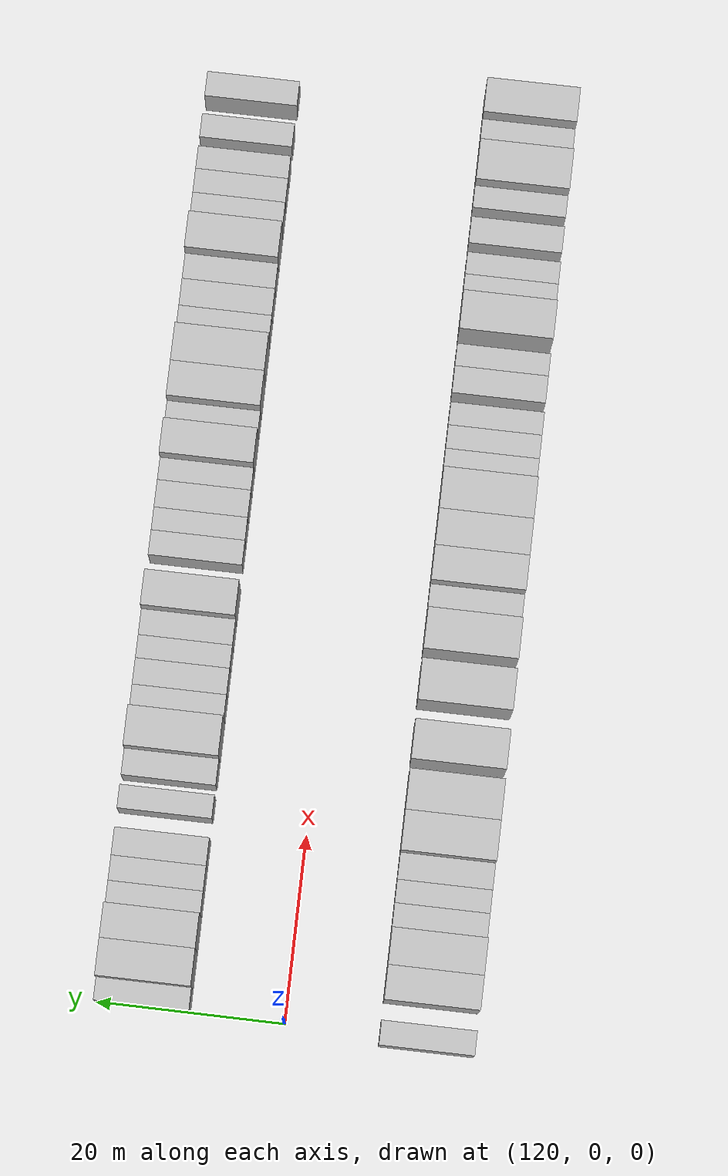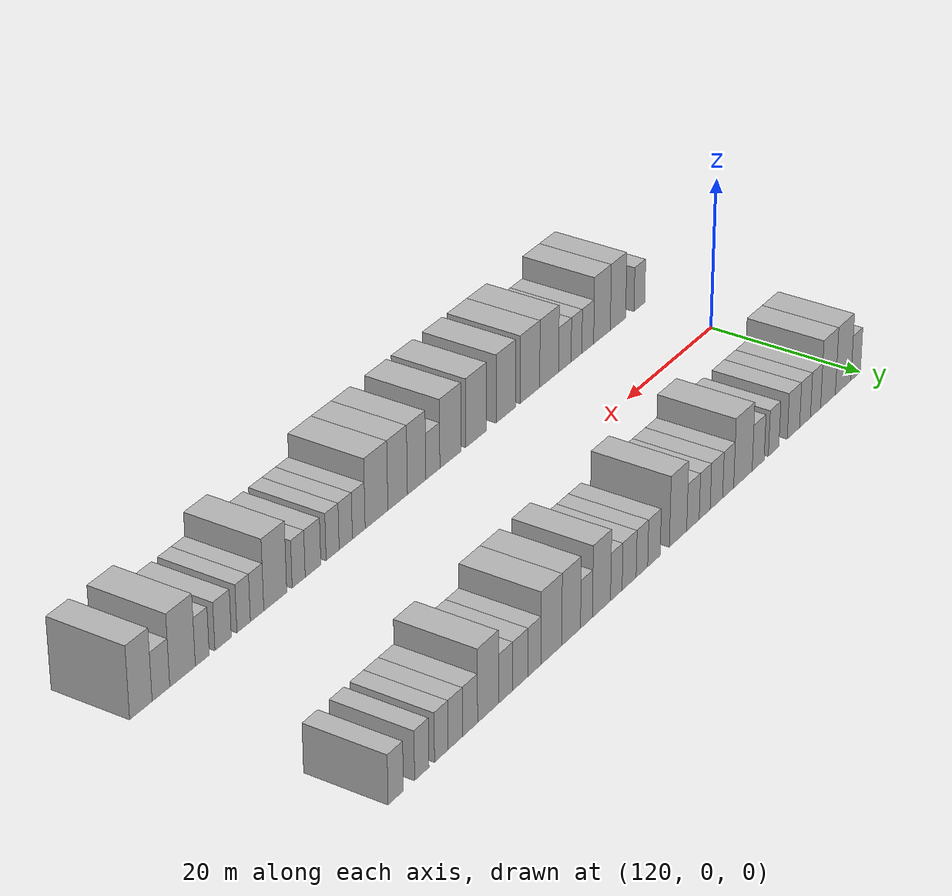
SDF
<sdf version="1.6">
 <world name="default">
  <model name="building_30">
   <static>1</static>
   <pose>121.2317 15.0000 0 0.000000 0.000000 1.570796</pose>
   <link name="link">
    <pose>0 0 3.00 0 0 0</pose>
    <collision name="collision"><geometry><box><size>10.0000 2.4235 6.0000</size></box></geometry></collision>
    <visual name="visual">
     <cast_shadows>0</cast_shadows>
     <geometry><box><size>10.0000 2.4235 6.0000</size></box></geometry>
     <material>
      <script>
       <uri>model://HANNAS_wall/materials/scripts</uri>
       <uri>model://HANNAS_wall/materials/textures</uri>
       <name>vrc/HANNAS_wall</name>
      </script>
     </material>
    </visual>
   </link>
  </model>
  <model name="building_31">
   <static>1</static>
   <pose>124.4070 15.0000 0 0.000000 0.000000 1.570796</pose>
   <link name="link">
    <pose>0 0 4.50 0 0 0</pose>
    <collision name="collision"><geometry><box><size>10.0000 3.9272 9.0000</size></box></geometry></collision>
    <visual name="visual">
     <cast_shadows>0</cast_shadows>
     <geometry><box><size>10.0000 3.9272 9.0000</size></box></geometry>
     <material>
      <script>
       <uri>model://HANNAS_wall/materials/scripts</uri>
       <uri>model://HANNAS_wall/materials/textures</uri>
       <name>vrc/HANNAS_wall</name>
      </script>
     </material>
    </visual>
   </link>
  </model>
  <model name="building_32">
   <static>1</static>
   <pose>128.2069 15.0000 0 0.000000 0.000000 1.570796</pose>
   <link name="link">
    <pose>0 0 4.50 0 0 0</pose>
    <collision name="collision"><geometry><box><size>10.0000 3.6725 9.0000</size></box></geometry></collision>
    <visual name="visual">
     <cast_shadows>0</cast_shadows>
     <geometry><box><size>10.0000 3.6725 9.0000</size></box></geometry>
     <material>
      <script>
       <uri>model://HANNAS_wall/materials/scripts</uri>
       <uri>model://HANNAS_wall/materials/textures</uri>
       <name>vrc/HANNAS_wall</name>
      </script>
     </material>
    </visual>
   </link>
  </model>
  <model name="building_33">
   <static>1</static>
   <pose>131.2854 15.0000 0 0.000000 0.000000 1.570796</pose>
   <link name="link">
    <pose>0 0 3.00 0 0 0</pose>
    <collision name="collision"><geometry><box><size>10.0000 2.4846 6.0000</size></box></geometry></collision>
    <visual name="visual">
     <cast_shadows>0</cast_shadows>
     <geometry><box><size>10.0000 2.4846 6.0000</size></box></geometry>
     <material>
      <script>
       <uri>model://HANNAS_wall/materials/scripts</uri>
       <uri>model://HANNAS_wall/materials/textures</uri>
       <name>vrc/HANNAS_wall</name>
      </script>
     </material>
    </visual>
   </link>
  </model>
  <model name="building_34">
   <static>1</static>
   <pose>133.8589 15.0000 0 0.000000 0.000000 1.570796</pose>
   <link name="link">
    <pose>0 0 3.00 0 0 0</pose>
    <collision name="collision"><geometry><box><size>10.0000 2.6624 6.0000</size></box></geometry></collision>
    <visual name="visual">
     <cast_shadows>0</cast_shadows>
     <geometry><box><size>10.0000 2.6624 6.0000</size></box></geometry>
     <material>
      <script>
       <uri>model://HANNAS_wall/materials/scripts</uri>
       <uri>model://HANNAS_wall/materials/textures</uri>
       <name>vrc/HANNAS_wall</name>
      </script>
     </material>
    </visual>
   </link>
  </model>
  <model name="building_35">
   <static>1</static>
   <pose>136.6706 15.0000 0 0.000000 0.000000 1.570796</pose>
   <link name="link">
    <pose>0 0 3.00 0 0 0</pose>
    <collision name="collision"><geometry><box><size>10.0000 2.9610 6.0000</size></box></geometry></collision>
    <visual name="visual">
     <cast_shadows>0</cast_shadows>
     <geometry><box><size>10.0000 2.9610 6.0000</size></box></geometry>
     <material>
      <script>
       <uri>model://HANNAS_wall/materials/scripts</uri>
       <uri>model://HANNAS_wall/materials/textures</uri>
       <name>vrc/HANNAS_wall</name>
      </script>
     </material>
    </visual>
   </link>
  </model>
  <model name="building_36">
   <static>1</static>
   <pose>141.4017 15.0000 0 0.000000 0.000000 1.570796</pose>
   <link name="link">
    <pose>0 0 3.00 0 0 0</pose>
    <collision name="collision"><geometry><box><size>10.0000 2.5013 6.0000</size></box></geometry></collision>
    <visual name="visual">
     <cast_shadows>0</cast_shadows>
     <geometry><box><size>10.0000 2.5013 6.0000</size></box></geometry>
     <material>
      <script>
       <uri>model://HANNAS_wall/materials/scripts</uri>
       <uri>model://HANNAS_wall/materials/textures</uri>
       <name>vrc/HANNAS_wall</name>
      </script>
     </material>
    </visual>
   </link>
  </model>
  <model name="building_37">
   <static>1</static>
   <pose>145.0635 15.0000 0 0.000000 0.000000 1.570796</pose>
   <link name="link">
    <pose>0 0 3.00 0 0 0</pose>
    <collision name="collision"><geometry><box><size>10.0000 2.8221 6.0000</size></box></geometry></collision>
    <visual name="visual">
     <cast_shadows>0</cast_shadows>
     <geometry><box><size>10.0000 2.8221 6.0000</size></box></geometry>
     <material>
      <script>
       <uri>model://HANNAS_wall/materials/scripts</uri>
       <uri>model://HANNAS_wall/materials/textures</uri>
       <name>vrc/HANNAS_wall</name>
      </script>
     </material>
    </visual>
   </link>
  </model>
  <model name="building_38">
   <static>1</static>
   <pose>148.6118 15.0000 0 0.000000 0.000000 1.570796</pose>
   <link name="link">
    <pose>0 0 4.50 0 0 0</pose>
    <collision name="collision"><geometry><box><size>10.0000 4.2746 9.0000</size></box></geometry></collision>
    <visual name="visual">
     <cast_shadows>0</cast_shadows>
     <geometry><box><size>10.0000 4.2746 9.0000</size></box></geometry>
     <material>
      <script>
       <uri>model://HANNAS_wall/materials/scripts</uri>
       <uri>model://HANNAS_wall/materials/textures</uri>
       <name>vrc/HANNAS_wall</name>
      </script>
     </material>
    </visual>
   </link>
  </model>
  <model name="building_39">
   <static>1</static>
   <pose>152.0125 15.0000 0 0.000000 0.000000 1.570796</pose>
   <link name="link">
    <pose>0 0 3.00 0 0 0</pose>
    <collision name="collision"><geometry><box><size>10.0000 2.5269 6.0000</size></box></geometry></collision>
    <visual name="visual">
     <cast_shadows>0</cast_shadows>
     <geometry><box><size>10.0000 2.5269 6.0000</size></box></geometry>
     <material>
      <script>
       <uri>model://HANNAS_wall/materials/scripts</uri>
       <uri>model://HANNAS_wall/materials/textures</uri>
       <name>vrc/HANNAS_wall</name>
      </script>
     </material>
    </visual>
   </link>
  </model>
  <model name="building_40">
   <static>1</static>
   <pose>154.6877 15.0000 0 0.000000 0.000000 1.570796</pose>
   <link name="link">
    <pose>0 0 3.00 0 0 0</pose>
    <collision name="collision"><geometry><box><size>10.0000 2.8236 6.0000</size></box></geometry></collision>
    <visual name="visual">
     <cast_shadows>0</cast_shadows>
     <geometry><box><size>10.0000 2.8236 6.0000</size></box></geometry>
     <material>
      <script>
       <uri>model://HANNAS_wall/materials/scripts</uri>
       <uri>model://HANNAS_wall/materials/textures</uri>
       <name>vrc/HANNAS_wall</name>
      </script>
     </material>
    </visual>
   </link>
  </model>
  <model name="building_41">
   <static>1</static>
   <pose>157.3309 15.0000 0 0.000000 0.000000 1.570796</pose>
   <link name="link">
    <pose>0 0 3.00 0 0 0</pose>
    <collision name="collision"><geometry><box><size>10.0000 2.4628 6.0000</size></box></geometry></collision>
    <visual name="visual">
     <cast_shadows>0</cast_shadows>
     <geometry><box><size>10.0000 2.4628 6.0000</size></box></geometry>
     <material>
      <script>
       <uri>model://HANNAS_wall/materials/scripts</uri>
       <uri>model://HANNAS_wall/materials/textures</uri>
       <name>vrc/HANNAS_wall</name>
      </script>
     </material>
    </visual>
   </link>
  </model>
  <model name="building_42">
   <static>1</static>
   <pose>159.9496 15.0000 0 0.000000 0.000000 1.570796</pose>
   <link name="link">
    <pose>0 0 3.00 0 0 0</pose>
    <collision name="collision"><geometry><box><size>10.0000 2.7746 6.0000</size></box></geometry></collision>
    <visual name="visual">
     <cast_shadows>0</cast_shadows>
     <geometry><box><size>10.0000 2.7746 6.0000</size></box></geometry>
     <material>
      <script>
       <uri>model://HANNAS_wall/materials/scripts</uri>
       <uri>model://HANNAS_wall/materials/textures</uri>
       <name>vrc/HANNAS_wall</name>
      </script>
     </material>
    </visual>
   </link>
  </model>
  <model name="building_43">
   <static>1</static>
   <pose>163.2400 15.0000 0 0.000000 0.000000 1.570796</pose>
   <link name="link">
    <pose>0 0 4.50 0 0 0</pose>
    <collision name="collision"><geometry><box><size>10.0000 3.8061 9.0000</size></box></geometry></collision>
    <visual name="visual">
     <cast_shadows>0</cast_shadows>
     <geometry><box><size>10.0000 3.8061 9.0000</size></box></geometry>
     <material>
      <script>
       <uri>model://HANNAS_wall/materials/scripts</uri>
       <uri>model://HANNAS_wall/materials/textures</uri>
       <name>vrc/HANNAS_wall</name>
      </script>
     </material>
    </visual>
   </link>
  </model>
  <model name="building_44">
   <static>1</static>
   <pose>168.4815 15.0000 0 0.000000 0.000000 1.570796</pose>
   <link name="link">
    <pose>0 0 3.00 0 0 0</pose>
    <collision name="collision"><geometry><box><size>10.0000 2.6769 6.0000</size></box></geometry></collision>
    <visual name="visual">
     <cast_shadows>0</cast_shadows>
     <geometry><box><size>10.0000 2.6769 6.0000</size></box></geometry>
     <material>
      <script>
       <uri>model://HANNAS_wall/materials/scripts</uri>
       <uri>model://HANNAS_wall/materials/textures</uri>
       <name>vrc/HANNAS_wall</name>
      </script>
     </material>
    </visual>
   </link>
  </model>
  <model name="building_45">
   <static>1</static>
   <pose>171.0509 15.0000 0 0.000000 0.000000 1.570796</pose>
   <link name="link">
    <pose>0 0 3.00 0 0 0</pose>
    <collision name="collision"><geometry><box><size>10.0000 2.4620 6.0000</size></box></geometry></collision>
    <visual name="visual">
     <cast_shadows>0</cast_shadows>
     <geometry><box><size>10.0000 2.4620 6.0000</size></box></geometry>
     <material>
      <script>
       <uri>model://HANNAS_wall/materials/scripts</uri>
       <uri>model://HANNAS_wall/materials/textures</uri>
       <name>vrc/HANNAS_wall</name>
      </script>
     </material>
    </visual>
   </link>
  </model>
  <model name="building_46">
   <static>1</static>
   <pose>173.7625 15.0000 0 0.000000 0.000000 1.570796</pose>
   <link name="link">
    <pose>0 0 3.00 0 0 0</pose>
    <collision name="collision"><geometry><box><size>10.0000 2.9611 6.0000</size></box></geometry></collision>
    <visual name="visual">
     <cast_shadows>0</cast_shadows>
     <geometry><box><size>10.0000 2.9611 6.0000</size></box></geometry>
     <material>
      <script>
       <uri>model://HANNAS_wall/materials/scripts</uri>
       <uri>model://HANNAS_wall/materials/textures</uri>
       <name>vrc/HANNAS_wall</name>
      </script>
     </material>
    </visual>
   </link>
  </model>
  <model name="building_47">
   <static>1</static>
   <pose>176.4523 15.0000 0 0.000000 0.000000 1.570796</pose>
   <link name="link">
    <pose>0 0 3.00 0 0 0</pose>
    <collision name="collision"><geometry><box><size>10.0000 2.4186 6.0000</size></box></geometry></collision>
    <visual name="visual">
     <cast_shadows>0</cast_shadows>
     <geometry><box><size>10.0000 2.4186 6.0000</size></box></geometry>
     <material>
      <script>
       <uri>model://HANNAS_wall/materials/scripts</uri>
       <uri>model://HANNAS_wall/materials/textures</uri>
       <name>vrc/HANNAS_wall</name>
      </script>
     </material>
    </visual>
   </link>
  </model>
  <model name="building_48">
   <static>1</static>
   <pose>179.5392 15.0000 0 0.000000 0.000000 1.570796</pose>
   <link name="link">
    <pose>0 0 4.50 0 0 0</pose>
    <collision name="collision"><geometry><box><size>10.0000 3.7551 9.0000</size></box></geometry></collision>
    <visual name="visual">
     <cast_shadows>0</cast_shadows>
     <geometry><box><size>10.0000 3.7551 9.0000</size></box></geometry>
     <material>
      <script>
       <uri>model://HANNAS_wall/materials/scripts</uri>
       <uri>model://HANNAS_wall/materials/textures</uri>
       <name>vrc/HANNAS_wall</name>
      </script>
     </material>
    </visual>
   </link>
  </model>
  <model name="building_49">
   <static>1</static>
   <pose>182.6211 15.0000 0 0.000000 0.000000 1.570796</pose>
   <link name="link">
    <pose>0 0 3.00 0 0 0</pose>
    <collision name="collision"><geometry><box><size>10.0000 2.4088 6.0000</size></box></geometry></collision>
    <visual name="visual">
     <cast_shadows>0</cast_shadows>
     <geometry><box><size>10.0000 2.4088 6.0000</size></box></geometry>
     <material>
      <script>
       <uri>model://HANNAS_wall/materials/scripts</uri>
       <uri>model://HANNAS_wall/materials/textures</uri>
       <name>vrc/HANNAS_wall</name>
      </script>
     </material>
    </visual>
   </link>
  </model>
  <model name="building_50">
   <static>1</static>
   <pose>185.7264 15.0000 0 0.000000 0.000000 1.570796</pose>
   <link name="link">
    <pose>0 0 4.50 0 0 0</pose>
    <collision name="collision"><geometry><box><size>10.0000 3.8017 9.0000</size></box></geometry></collision>
    <visual name="visual">
     <cast_shadows>0</cast_shadows>
     <geometry><box><size>10.0000 3.8017 9.0000</size></box></geometry>
     <material>
      <script>
       <uri>model://HANNAS_wall/materials/scripts</uri>
       <uri>model://HANNAS_wall/materials/textures</uri>
       <name>vrc/HANNAS_wall</name>
      </script>
     </material>
    </visual>
   </link>
  </model>
  <model name="building_51">
   <static>1</static>
   <pose>189.6800 15.0000 0 0.000000 0.000000 1.570796</pose>
   <link name="link">
    <pose>0 0 4.50 0 0 0</pose>
    <collision name="collision"><geometry><box><size>10.0000 4.1055 9.0000</size></box></geometry></collision>
    <visual name="visual">
     <cast_shadows>0</cast_shadows>
     <geometry><box><size>10.0000 4.1055 9.0000</size></box></geometry>
     <material>
      <script>
       <uri>model://HANNAS_wall/materials/scripts</uri>
       <uri>model://HANNAS_wall/materials/textures</uri>
       <name>vrc/HANNAS_wall</name>
      </script>
     </material>
    </visual>
   </link>
  </model>
  <model name="building_52">
   <static>1</static>
   <pose>192.9981 15.0000 0 0.000000 0.000000 1.570796</pose>
   <link name="link">
    <pose>0 0 3.00 0 0 0</pose>
    <collision name="collision"><geometry><box><size>10.0000 2.5307 6.0000</size></box></geometry></collision>
    <visual name="visual">
     <cast_shadows>0</cast_shadows>
     <geometry><box><size>10.0000 2.5307 6.0000</size></box></geometry>
     <material>
      <script>
       <uri>model://HANNAS_wall/materials/scripts</uri>
       <uri>model://HANNAS_wall/materials/textures</uri>
       <name>vrc/HANNAS_wall</name>
      </script>
     </material>
    </visual>
   </link>
  </model>
  <model name="building_53">
   <static>1</static>
   <pose>195.7391 15.0000 0 0.000000 0.000000 1.570796</pose>
   <link name="link">
    <pose>0 0 3.00 0 0 0</pose>
    <collision name="collision"><geometry><box><size>10.0000 2.9514 6.0000</size></box></geometry></collision>
    <visual name="visual">
     <cast_shadows>0</cast_shadows>
     <geometry><box><size>10.0000 2.9514 6.0000</size></box></geometry>
     <material>
      <script>
       <uri>model://HANNAS_wall/materials/scripts</uri>
       <uri>model://HANNAS_wall/materials/textures</uri>
       <name>vrc/HANNAS_wall</name>
      </script>
     </material>
    </visual>
   </link>
  </model>
  <model name="building_54">
   <static>1</static>
   <pose>198.5940 15.0000 0 0.000000 0.000000 1.570796</pose>
   <link name="link">
    <pose>0 0 3.00 0 0 0</pose>
    <collision name="collision"><geometry><box><size>10.0000 2.7584 6.0000</size></box></geometry></collision>
    <visual name="visual">
     <cast_shadows>0</cast_shadows>
     <geometry><box><size>10.0000 2.7584 6.0000</size></box></geometry>
     <material>
      <script>
       <uri>model://HANNAS_wall/materials/scripts</uri>
       <uri>model://HANNAS_wall/materials/textures</uri>
       <name>vrc/HANNAS_wall</name>
      </script>
     </material>
    </visual>
   </link>
  </model>
  <model name="building_55">
   <static>1</static>
   <pose>201.9436 15.0000 0 0.000000 0.000000 1.570796</pose>
   <link name="link">
    <pose>0 0 4.50 0 0 0</pose>
    <collision name="collision"><geometry><box><size>10.0000 3.9408 9.0000</size></box></geometry></collision>
    <visual name="visual">
     <cast_shadows>0</cast_shadows>
     <geometry><box><size>10.0000 3.9408 9.0000</size></box></geometry>
     <material>
      <script>
       <uri>model://HANNAS_wall/materials/scripts</uri>
       <uri>model://HANNAS_wall/materials/textures</uri>
       <name>vrc/HANNAS_wall</name>
      </script>
     </material>
    </visual>
   </link>
  </model>
  <model name="building_56">
   <static>1</static>
   <pose>205.3190 15.0000 0 0.000000 0.000000 1.570796</pose>
   <link name="link">
    <pose>0 0 3.00 0 0 0</pose>
    <collision name="collision"><geometry><box><size>10.0000 2.8100 6.0000</size></box></geometry></collision>
    <visual name="visual">
     <cast_shadows>0</cast_shadows>
     <geometry><box><size>10.0000 2.8100 6.0000</size></box></geometry>
     <material>
      <script>
       <uri>model://HANNAS_wall/materials/scripts</uri>
       <uri>model://HANNAS_wall/materials/textures</uri>
       <name>vrc/HANNAS_wall</name>
      </script>
     </material>
    </visual>
   </link>
  </model>
  <model name="building_57">
   <static>1</static>
   <pose>208.0431 15.0000 0 0.000000 0.000000 1.570796</pose>
   <link name="link">
    <pose>0 0 3.00 0 0 0</pose>
    <collision name="collision"><geometry><box><size>10.0000 2.6382 6.0000</size></box></geometry></collision>
    <visual name="visual">
     <cast_shadows>0</cast_shadows>
     <geometry><box><size>10.0000 2.6382 6.0000</size></box></geometry>
     <material>
      <script>
       <uri>model://HANNAS_wall/materials/scripts</uri>
       <uri>model://HANNAS_wall/materials/textures</uri>
       <name>vrc/HANNAS_wall</name>
      </script>
     </material>
    </visual>
   </link>
  </model>
  <model name="building_58">
   <static>1</static>
   <pose>210.6156 15.0000 0 0.000000 0.000000 1.570796</pose>
   <link name="link">
    <pose>0 0 3.00 0 0 0</pose>
    <collision name="collision"><geometry><box><size>10.0000 2.5069 6.0000</size></box></geometry></collision>
    <visual name="visual">
     <cast_shadows>0</cast_shadows>
     <geometry><box><size>10.0000 2.5069 6.0000</size></box></geometry>
     <material>
      <script>
       <uri>model://HANNAS_wall/materials/scripts</uri>
       <uri>model://HANNAS_wall/materials/textures</uri>
       <name>vrc/HANNAS_wall</name>
      </script>
     </material>
    </visual>
   </link>
  </model>
  <model name="building_59">
   <static>1</static>
   <pose>214.1637 15.0000 0 0.000000 0.000000 1.570796</pose>
   <link name="link">
    <pose>0 0 3.00 0 0 0</pose>
    <collision name="collision"><geometry><box><size>10.0000 2.5893 6.0000</size></box></geometry></collision>
    <visual name="visual">
     <cast_shadows>0</cast_shadows>
     <geometry><box><size>10.0000 2.5893 6.0000</size></box></geometry>
     <material>
      <script>
       <uri>model://HANNAS_wall/materials/scripts</uri>
       <uri>model://HANNAS_wall/materials/textures</uri>
       <name>vrc/HANNAS_wall</name>
      </script>
     </material>
    </visual>
   </link>
  </model>
  <model name="building_60">
   <static>1</static>
   <pose>218.8112 15.0000 0 0.000000 0.000000 1.570796</pose>
   <link name="link">
    <pose>0 0 3.00 0 0 0</pose>
    <collision name="collision"><geometry><box><size>10.0000 2.7057 6.0000</size></box></geometry></collision>
    <visual name="visual">
     <cast_shadows>0</cast_shadows>
     <geometry><box><size>10.0000 2.7057 6.0000</size></box></geometry>
     <material>
      <script>
       <uri>model://HANNAS_wall/materials/scripts</uri>
       <uri>model://HANNAS_wall/materials/textures</uri>
       <name>vrc/HANNAS_wall</name>
      </script>
     </material>
    </visual>
   </link>
  </model>
  <model name="building_90">
   <static>1</static>
   <pose>120.0984 -15.0000 0 0.000000 0.000000 1.570796</pose>
   <link name="link">
    <pose>0 0 3.00 0 0 0</pose>
    <collision name="collision"><geometry><box><size>10.0000 2.5955 6.0000</size></box></geometry></collision>
    <visual name="visual">
     <cast_shadows>0</cast_shadows>
     <geometry><box><size>10.0000 2.5955 6.0000</size></box></geometry>
     <material>
      <script>
       <uri>model://HANNAS_wall/materials/scripts</uri>
       <uri>model://HANNAS_wall/materials/textures</uri>
       <name>vrc/HANNAS_wall</name>
      </script>
     </material>
    </visual>
   </link>
  </model>
  <model name="building_91">
   <static>1</static>
   <pose>125.2078 -15.0000 0 0.000000 0.000000 1.570796</pose>
   <link name="link">
    <pose>0 0 4.50 0 0 0</pose>
    <collision name="collision"><geometry><box><size>10.0000 3.6233 9.0000</size></box></geometry></collision>
    <visual name="visual">
     <cast_shadows>0</cast_shadows>
     <geometry><box><size>10.0000 3.6233 9.0000</size></box></geometry>
     <material>
      <script>
       <uri>model://HANNAS_wall/materials/scripts</uri>
       <uri>model://HANNAS_wall/materials/textures</uri>
       <name>vrc/HANNAS_wall</name>
      </script>
     </material>
    </visual>
   </link>
  </model>
  <model name="building_92">
   <static>1</static>
   <pose>128.9704 -15.0000 0 0.000000 0.000000 1.570796</pose>
   <link name="link">
    <pose>0 0 4.50 0 0 0</pose>
    <collision name="collision"><geometry><box><size>10.0000 3.9018 9.0000</size></box></geometry></collision>
    <visual name="visual">
     <cast_shadows>0</cast_shadows>
     <geometry><box><size>10.0000 3.9018 9.0000</size></box></geometry>
     <material>
      <script>
       <uri>model://HANNAS_wall/materials/scripts</uri>
       <uri>model://HANNAS_wall/materials/textures</uri>
       <name>vrc/HANNAS_wall</name>
      </script>
     </material>
    </visual>
   </link>
  </model>
  <model name="building_93">
   <static>1</static>
   <pose>132.2763 -15.0000 0 0.000000 0.000000 1.570796</pose>
   <link name="link">
    <pose>0 0 3.00 0 0 0</pose>
    <collision name="collision"><geometry><box><size>10.0000 2.7100 6.0000</size></box></geometry></collision>
    <visual name="visual">
     <cast_shadows>0</cast_shadows>
     <geometry><box><size>10.0000 2.7100 6.0000</size></box></geometry>
     <material>
      <script>
       <uri>model://HANNAS_wall/materials/scripts</uri>
       <uri>model://HANNAS_wall/materials/textures</uri>
       <name>vrc/HANNAS_wall</name>
      </script>
     </material>
    </visual>
   </link>
  </model>
  <model name="building_94">
   <static>1</static>
   <pose>134.8609 -15.0000 0 0.000000 0.000000 1.570796</pose>
   <link name="link">
    <pose>0 0 3.00 0 0 0</pose>
    <collision name="collision"><geometry><box><size>10.0000 2.4592 6.0000</size></box></geometry></collision>
    <visual name="visual">
     <cast_shadows>0</cast_shadows>
     <geometry><box><size>10.0000 2.4592 6.0000</size></box></geometry>
     <material>
      <script>
       <uri>model://HANNAS_wall/materials/scripts</uri>
       <uri>model://HANNAS_wall/materials/textures</uri>
       <name>vrc/HANNAS_wall</name>
      </script>
     </material>
    </visual>
   </link>
  </model>
  <model name="building_95">
   <static>1</static>
   <pose>137.5062 -15.0000 0 0.000000 0.000000 1.570796</pose>
   <link name="link">
    <pose>0 0 3.00 0 0 0</pose>
    <collision name="collision"><geometry><box><size>10.0000 2.8316 6.0000</size></box></geometry></collision>
    <visual name="visual">
     <cast_shadows>0</cast_shadows>
     <geometry><box><size>10.0000 2.8316 6.0000</size></box></geometry>
     <material>
      <script>
       <uri>model://HANNAS_wall/materials/scripts</uri>
       <uri>model://HANNAS_wall/materials/textures</uri>
       <name>vrc/HANNAS_wall</name>
      </script>
     </material>
    </visual>
   </link>
  </model>
  <model name="building_96">
   <static>1</static>
   <pose>141.0526 -15.0000 0 0.000000 0.000000 1.570796</pose>
   <link name="link">
    <pose>0 0 4.50 0 0 0</pose>
    <collision name="collision"><geometry><box><size>10.0000 4.2611 9.0000</size></box></geometry></collision>
    <visual name="visual">
     <cast_shadows>0</cast_shadows>
     <geometry><box><size>10.0000 4.2611 9.0000</size></box></geometry>
     <material>
      <script>
       <uri>model://HANNAS_wall/materials/scripts</uri>
       <uri>model://HANNAS_wall/materials/textures</uri>
       <name>vrc/HANNAS_wall</name>
      </script>
     </material>
    </visual>
   </link>
  </model>
  <model name="building_97">
   <static>1</static>
   <pose>145.3453 -15.0000 0 0.000000 0.000000 1.570796</pose>
   <link name="link">
    <pose>0 0 4.50 0 0 0</pose>
    <collision name="collision"><geometry><box><size>10.0000 4.3242 9.0000</size></box></geometry></collision>
    <visual name="visual">
     <cast_shadows>0</cast_shadows>
     <geometry><box><size>10.0000 4.3242 9.0000</size></box></geometry>
     <material>
      <script>
       <uri>model://HANNAS_wall/materials/scripts</uri>
       <uri>model://HANNAS_wall/materials/textures</uri>
       <name>vrc/HANNAS_wall</name>
      </script>
     </material>
    </visual>
   </link>
  </model>
  <model name="building_98">
   <static>1</static>
   <pose>150.6221 -15.0000 0 0.000000 0.000000 1.570796</pose>
   <link name="link">
    <pose>0 0 4.50 0 0 0</pose>
    <collision name="collision"><geometry><box><size>10.0000 4.2294 9.0000</size></box></geometry></collision>
    <visual name="visual">
     <cast_shadows>0</cast_shadows>
     <geometry><box><size>10.0000 4.2294 9.0000</size></box></geometry>
     <material>
      <script>
       <uri>model://HANNAS_wall/materials/scripts</uri>
       <uri>model://HANNAS_wall/materials/textures</uri>
       <name>vrc/HANNAS_wall</name>
      </script>
     </material>
    </visual>
   </link>
  </model>
  <model name="building_99">
   <static>1</static>
   <pose>156.9536 -15.0000 0 0.000000 0.000000 1.570796</pose>
   <link name="link">
    <pose>0 0 4.50 0 0 0</pose>
    <collision name="collision"><geometry><box><size>10.0000 4.4337 9.0000</size></box></geometry></collision>
    <visual name="visual">
     <cast_shadows>0</cast_shadows>
     <geometry><box><size>10.0000 4.4337 9.0000</size></box></geometry>
     <material>
      <script>
       <uri>model://HANNAS_wall/materials/scripts</uri>
       <uri>model://HANNAS_wall/materials/textures</uri>
       <name>vrc/HANNAS_wall</name>
      </script>
     </material>
    </visual>
   </link>
  </model>
  <model name="building_100">
   <static>1</static>
   <pose>162.3765 -15.0000 0 0.000000 0.000000 1.570796</pose>
   <link name="link">
    <pose>0 0 4.50 0 0 0</pose>
    <collision name="collision"><geometry><box><size>10.0000 4.4120 9.0000</size></box></geometry></collision>
    <visual name="visual">
     <cast_shadows>0</cast_shadows>
     <geometry><box><size>10.0000 4.4120 9.0000</size></box></geometry>
     <material>
      <script>
       <uri>model://HANNAS_wall/materials/scripts</uri>
       <uri>model://HANNAS_wall/materials/textures</uri>
       <name>vrc/HANNAS_wall</name>
      </script>
     </material>
    </visual>
   </link>
  </model>
  <model name="building_101">
   <static>1</static>
   <pose>166.0239 -15.0000 0 0.000000 0.000000 1.570796</pose>
   <link name="link">
    <pose>0 0 3.00 0 0 0</pose>
    <collision name="collision"><geometry><box><size>10.0000 2.8829 6.0000</size></box></geometry></collision>
    <visual name="visual">
     <cast_shadows>0</cast_shadows>
     <geometry><box><size>10.0000 2.8829 6.0000</size></box></geometry>
     <material>
      <script>
       <uri>model://HANNAS_wall/materials/scripts</uri>
       <uri>model://HANNAS_wall/materials/textures</uri>
       <name>vrc/HANNAS_wall</name>
      </script>
     </material>
    </visual>
   </link>
  </model>
  <model name="building_102">
   <static>1</static>
   <pose>169.3363 -15.0000 0 0.000000 0.000000 1.570796</pose>
   <link name="link">
    <pose>0 0 4.50 0 0 0</pose>
    <collision name="collision"><geometry><box><size>10.0000 3.7418 9.0000</size></box></geometry></collision>
    <visual name="visual">
     <cast_shadows>0</cast_shadows>
     <geometry><box><size>10.0000 3.7418 9.0000</size></box></geometry>
     <material>
      <script>
       <uri>model://HANNAS_wall/materials/scripts</uri>
       <uri>model://HANNAS_wall/materials/textures</uri>
       <name>vrc/HANNAS_wall</name>
      </script>
     </material>
    </visual>
   </link>
  </model>
  <model name="building_103">
   <static>1</static>
   <pose>173.1660 -15.0000 0 0.000000 0.000000 1.570796</pose>
   <link name="link">
    <pose>0 0 4.50 0 0 0</pose>
    <collision name="collision"><geometry><box><size>10.0000 3.9175 9.0000</size></box></geometry></collision>
    <visual name="visual">
     <cast_shadows>0</cast_shadows>
     <geometry><box><size>10.0000 3.9175 9.0000</size></box></geometry>
     <material>
      <script>
       <uri>model://HANNAS_wall/materials/scripts</uri>
       <uri>model://HANNAS_wall/materials/textures</uri>
       <name>vrc/HANNAS_wall</name>
      </script>
     </material>
    </visual>
   </link>
  </model>
  <model name="building_104">
   <static>1</static>
   <pose>177.3644 -15.0000 0 0.000000 0.000000 1.570796</pose>
   <link name="link">
    <pose>0 0 4.50 0 0 0</pose>
    <collision name="collision"><geometry><box><size>10.0000 4.4794 9.0000</size></box></geometry></collision>
    <visual name="visual">
     <cast_shadows>0</cast_shadows>
     <geometry><box><size>10.0000 4.4794 9.0000</size></box></geometry>
     <material>
      <script>
       <uri>model://HANNAS_wall/materials/scripts</uri>
       <uri>model://HANNAS_wall/materials/textures</uri>
       <name>vrc/HANNAS_wall</name>
      </script>
     </material>
    </visual>
   </link>
  </model>
  <model name="building_105">
   <static>1</static>
   <pose>180.8478 -15.0000 0 0.000000 0.000000 1.570796</pose>
   <link name="link">
    <pose>0 0 3.00 0 0 0</pose>
    <collision name="collision"><geometry><box><size>10.0000 2.4873 6.0000</size></box></geometry></collision>
    <visual name="visual">
     <cast_shadows>0</cast_shadows>
     <geometry><box><size>10.0000 2.4873 6.0000</size></box></geometry>
     <material>
      <script>
       <uri>model://HANNAS_wall/materials/scripts</uri>
       <uri>model://HANNAS_wall/materials/textures</uri>
       <name>vrc/HANNAS_wall</name>
      </script>
     </material>
    </visual>
   </link>
  </model>
  <model name="building_106">
   <static>1</static>
   <pose>183.3682 -15.0000 0 0.000000 0.000000 1.570796</pose>
   <link name="link">
    <pose>0 0 3.00 0 0 0</pose>
    <collision name="collision"><geometry><box><size>10.0000 2.5535 6.0000</size></box></geometry></collision>
    <visual name="visual">
     <cast_shadows>0</cast_shadows>
     <geometry><box><size>10.0000 2.5535 6.0000</size></box></geometry>
     <material>
      <script>
       <uri>model://HANNAS_wall/materials/scripts</uri>
       <uri>model://HANNAS_wall/materials/textures</uri>
       <name>vrc/HANNAS_wall</name>
      </script>
     </material>
    </visual>
   </link>
  </model>
  <model name="building_107">
   <static>1</static>
   <pose>185.8934 -15.0000 0 0.000000 0.000000 1.570796</pose>
   <link name="link">
    <pose>0 0 3.00 0 0 0</pose>
    <collision name="collision"><geometry><box><size>10.0000 2.4969 6.0000</size></box></geometry></collision>
    <visual name="visual">
     <cast_shadows>0</cast_shadows>
     <geometry><box><size>10.0000 2.4969 6.0000</size></box></geometry>
     <material>
      <script>
       <uri>model://HANNAS_wall/materials/scripts</uri>
       <uri>model://HANNAS_wall/materials/textures</uri>
       <name>vrc/HANNAS_wall</name>
      </script>
     </material>
    </visual>
   </link>
  </model>
  <model name="building_108">
   <static>1</static>
   <pose>189.6166 -15.0000 0 0.000000 0.000000 1.570796</pose>
   <link name="link">
    <pose>0 0 3.00 0 0 0</pose>
    <collision name="collision"><geometry><box><size>10.0000 2.9494 6.0000</size></box></geometry></collision>
    <visual name="visual">
     <cast_shadows>0</cast_shadows>
     <geometry><box><size>10.0000 2.9494 6.0000</size></box></geometry>
     <material>
      <script>
       <uri>model://HANNAS_wall/materials/scripts</uri>
       <uri>model://HANNAS_wall/materials/textures</uri>
       <name>vrc/HANNAS_wall</name>
      </script>
     </material>
    </visual>
   </link>
  </model>
  <model name="building_109">
   <static>1</static>
   <pose>192.3065 -15.0000 0 0.000000 0.000000 1.570796</pose>
   <link name="link">
    <pose>0 0 3.00 0 0 0</pose>
    <collision name="collision"><geometry><box><size>10.0000 2.4305 6.0000</size></box></geometry></collision>
    <visual name="visual">
     <cast_shadows>0</cast_shadows>
     <geometry><box><size>10.0000 2.4305 6.0000</size></box></geometry>
     <material>
      <script>
       <uri>model://HANNAS_wall/materials/scripts</uri>
       <uri>model://HANNAS_wall/materials/textures</uri>
       <name>vrc/HANNAS_wall</name>
      </script>
     </material>
    </visual>
   </link>
  </model>
  <model name="building_110">
   <static>1</static>
   <pose>196.6286 -15.0000 0 0.000000 0.000000 1.570796</pose>
   <link name="link">
    <pose>0 0 4.50 0 0 0</pose>
    <collision name="collision"><geometry><box><size>10.0000 4.2137 9.0000</size></box></geometry></collision>
    <visual name="visual">
     <cast_shadows>0</cast_shadows>
     <geometry><box><size>10.0000 4.2137 9.0000</size></box></geometry>
     <material>
      <script>
       <uri>model://HANNAS_wall/materials/scripts</uri>
       <uri>model://HANNAS_wall/materials/textures</uri>
       <name>vrc/HANNAS_wall</name>
      </script>
     </material>
    </visual>
   </link>
  </model>
  <model name="building_111">
   <static>1</static>
   <pose>199.9498 -15.0000 0 0.000000 0.000000 1.570796</pose>
   <link name="link">
    <pose>0 0 3.00 0 0 0</pose>
    <collision name="collision"><geometry><box><size>10.0000 2.4287 6.0000</size></box></geometry></collision>
    <visual name="visual">
     <cast_shadows>0</cast_shadows>
     <geometry><box><size>10.0000 2.4287 6.0000</size></box></geometry>
     <material>
      <script>
       <uri>model://HANNAS_wall/materials/scripts</uri>
       <uri>model://HANNAS_wall/materials/textures</uri>
       <name>vrc/HANNAS_wall</name>
      </script>
     </material>
    </visual>
   </link>
  </model>
  <model name="building_112">
   <static>1</static>
   <pose>202.3743 -15.0000 0 0.000000 0.000000 1.570796</pose>
   <link name="link">
    <pose>0 0 3.00 0 0 0</pose>
    <collision name="collision"><geometry><box><size>10.0000 2.4203 6.0000</size></box></geometry></collision>
    <visual name="visual">
     <cast_shadows>0</cast_shadows>
     <geometry><box><size>10.0000 2.4203 6.0000</size></box></geometry>
     <material>
      <script>
       <uri>model://HANNAS_wall/materials/scripts</uri>
       <uri>model://HANNAS_wall/materials/textures</uri>
       <name>vrc/HANNAS_wall</name>
      </script>
     </material>
    </visual>
   </link>
  </model>
  <model name="building_113">
   <static>1</static>
   <pose>206.0370 -15.0000 0 0.000000 0.000000 1.570796</pose>
   <link name="link">
    <pose>0 0 3.00 0 0 0</pose>
    <collision name="collision"><geometry><box><size>10.0000 2.9051 6.0000</size></box></geometry></collision>
    <visual name="visual">
     <cast_shadows>0</cast_shadows>
     <geometry><box><size>10.0000 2.9051 6.0000</size></box></geometry>
     <material>
      <script>
       <uri>model://HANNAS_wall/materials/scripts</uri>
       <uri>model://HANNAS_wall/materials/textures</uri>
       <name>vrc/HANNAS_wall</name>
      </script>
     </material>
    </visual>
   </link>
  </model>
  <model name="building_114">
   <static>1</static>
   <pose>209.7016 -15.0000 0 0.000000 0.000000 1.570796</pose>
   <link name="link">
    <pose>0 0 3.00 0 0 0</pose>
    <collision name="collision"><geometry><box><size>10.0000 2.4241 6.0000</size></box></geometry></collision>
    <visual name="visual">
     <cast_shadows>0</cast_shadows>
     <geometry><box><size>10.0000 2.4241 6.0000</size></box></geometry>
     <material>
      <script>
       <uri>model://HANNAS_wall/materials/scripts</uri>
       <uri>model://HANNAS_wall/materials/textures</uri>
       <name>vrc/HANNAS_wall</name>
      </script>
     </material>
    </visual>
   </link>
  </model>
  <model name="building_115">
   <static>1</static>
   <pose>213.1197 -15.0000 0 0.000000 0.000000 1.570796</pose>
   <link name="link">
    <pose>0 0 4.50 0 0 0</pose>
    <collision name="collision"><geometry><box><size>10.0000 4.4122 9.0000</size></box></geometry></collision>
    <visual name="visual">
     <cast_shadows>0</cast_shadows>
     <geometry><box><size>10.0000 4.4122 9.0000</size></box></geometry>
     <material>
      <script>
       <uri>model://HANNAS_wall/materials/scripts</uri>
       <uri>model://HANNAS_wall/materials/textures</uri>
       <name>vrc/HANNAS_wall</name>
      </script>
     </material>
    </visual>
   </link>
  </model>
  <model name="building_116">
   <static>1</static>
   <pose>216.8201 -15.0000 0 0.000000 0.000000 1.570796</pose>
   <link name="link">
    <pose>0 0 3.00 0 0 0</pose>
    <collision name="collision"><geometry><box><size>10.0000 2.9885 6.0000</size></box></geometry></collision>
    <visual name="visual">
     <cast_shadows>0</cast_shadows>
     <geometry><box><size>10.0000 2.9885 6.0000</size></box></geometry>
     <material>
      <script>
       <uri>model://HANNAS_wall/materials/scripts</uri>
       <uri>model://HANNAS_wall/materials/textures</uri>
       <name>vrc/HANNAS_wall</name>
      </script>
     </material>
    </visual>
   </link>
  </model>
  <model name="building_117">
   <static>1</static>
   <pose>220.2063 -15.0000 0 0.000000 0.000000 1.570796</pose>
   <link name="link">
    <pose>0 0 4.50 0 0 0</pose>
    <collision name="collision"><geometry><box><size>10.0000 3.7839 9.0000</size></box></geometry></collision>
    <visual name="visual">
     <cast_shadows>0</cast_shadows>
     <geometry><box><size>10.0000 3.7839 9.0000</size></box></geometry>
     <material>
      <script>
       <uri>model://HANNAS_wall/materials/scripts</uri>
       <uri>model://HANNAS_wall/materials/textures</uri>
       <name>vrc/HANNAS_wall</name>
      </script>
     </material>
    </visual>
   </link>
  </model>
 </world>
</sdf>
